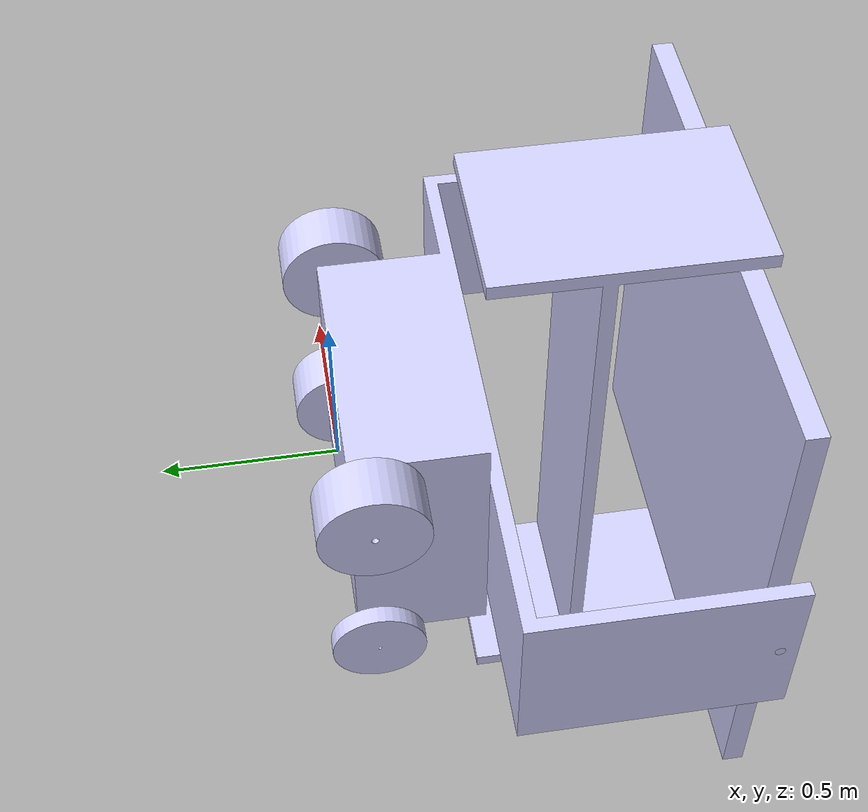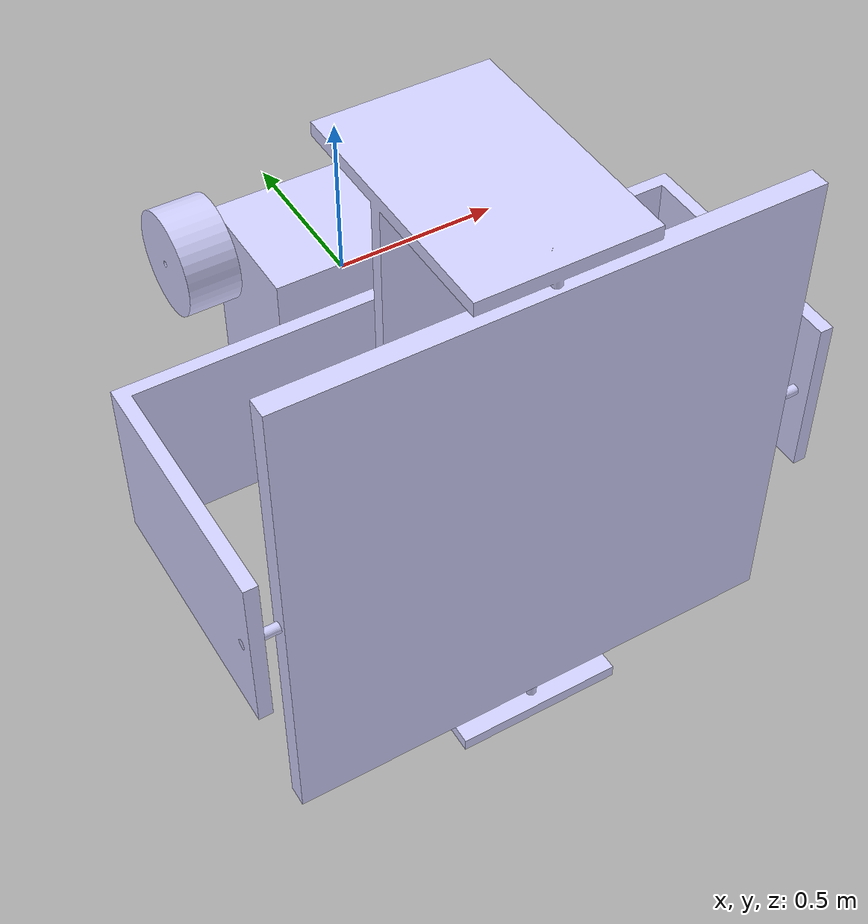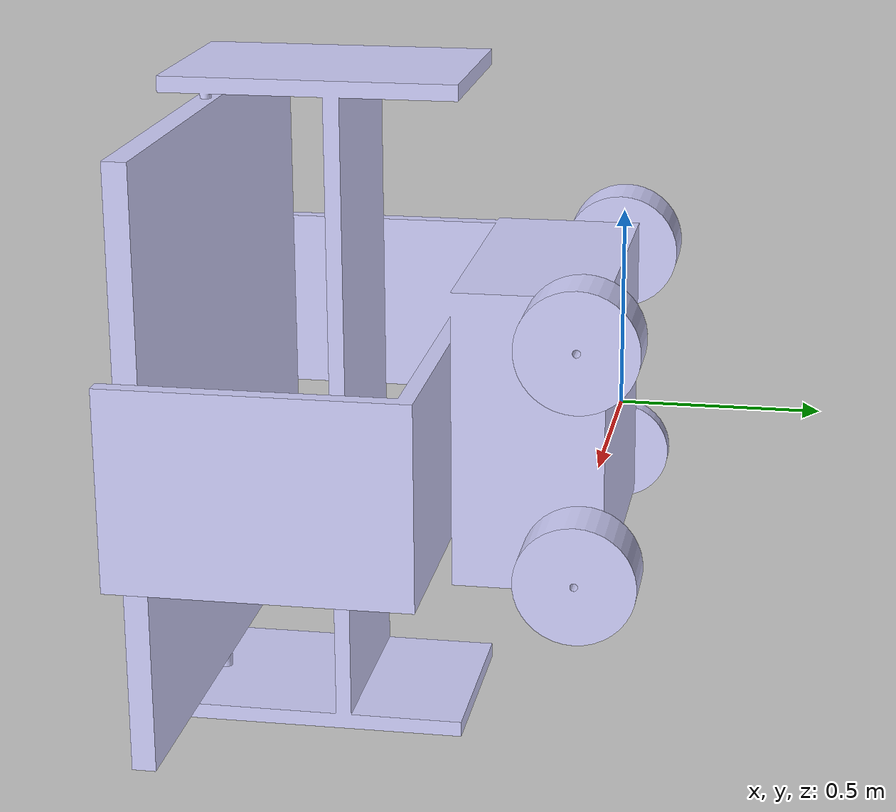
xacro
<?xml version="1.0" encoding="utf-8"?>

<robot name="Mobile_Leveling_Platform_V2" xmlns:xacro="http://ros.org/wiki/xacro">

  <link
    name="base_link">
    <inertial>
      <origin
        xyz="0.000264293169840443 2.30397979722199E-17 0.272726096989661"
        rpy="0 0 0" />
      <mass
        value="272.93514380551" />
      <inertia
        ixx="23.584412468661"
        ixy="4.24853656306549E-15"
        ixz="3.65668447623808E-14"
        iyy="49.7334587830144"
        iyz="-1.97786741837889E-15"
        izz="48.5014313731974" />
    </inertial>
    <visual>
      <origin
        xyz="0 0 0"
        rpy="0 0 0" />
      <geometry>
        <mesh
          filename="package://Mobile_Leveling_Platform_V2/Cmesh/base_link.STL" />
      </geometry>
      <material
        name="">
        <color
          rgba="0.823529411764706 0.823529411764706 1 1" />
      </material>
    </visual>
    <collision>
      <origin
        xyz="0 0 0"
        rpy="0 0 0" />
      <geometry>
        <mesh
          filename="package://Mobile_Leveling_Platform_V2/Cmesh/base_link.STL" />
      </geometry>
    </collision>
  </link>
  <link
    name="upper_rev_link">
    <inertial>
      <origin
        xyz="0 -1.57002047618442E-19 0"
        rpy="0 0 0" />
      <mass
        value="0.0918915851175015" />
      <inertia
        ixx="1.03378033257189E-05"
        ixy="1.1224284737885E-36"
        ixz="0"
        iyy="0.000134582884036674"
        iyz="1.65681558757775E-53"
        izz="0.000134582884036674" />
    </inertial>
    <visual>
      <origin
        xyz="0 0 0"
        rpy="0 0 0" />
      <geometry>
        <mesh
          filename="package://Mobile_Leveling_Platform_V2/Cmesh/upper_rev_link.STL" />
      </geometry>
      <material
        name="">
        <color
          rgba="0.823529411764706 0.823529411764706 1 1" />
      </material>
    </visual>
    <collision>
      <origin
        xyz="0 0 0"
        rpy="0 0 0" />
      <geometry>
        <mesh
          filename="package://Mobile_Leveling_Platform_V2/Cmesh/upper_rev_link.STL" />
      </geometry>
    </collision>
  </link>
  <joint
    name="upper_rev_joint"
    type="revolute">
    <origin
      xyz="-0.785 -1.065 0"
      rpy="1.5708 0 0" />
    <parent
      link="base_link" />
    <child
      link="upper_rev_link" />
    <axis
      xyz="1 0 0" />
    <limit
      lower="-0.5236"
      upper="0.5236"
      effort="1"
      velocity="1" />
  </joint>
  <link
    name="upper">
    <inertial>
      <origin
        xyz="1.78302665698728E-18 -2.91008325677673E-17 0"
        rpy="0 0 0" />
      <mass
        value="134.915176998353" />
      <inertia
        ixx="25.3300779091643"
        ixy="-5.66495635123674E-18"
        ixz="6.83328050975665E-39"
        iyy="25.3300779091643"
        iyz="0"
        izz="50.5791653609164" />
    </inertial>
    <visual>
      <origin
        xyz="0 0 0"
        rpy="0 0 0" />
      <geometry>
        <mesh
          filename="package://Mobile_Leveling_Platform_V2/Cmesh/upper.STL" />
      </geometry>
      <material
        name="">
        <color
          rgba="0.823529411764706 0.823529411764706 1 1" />
      </material>
    </visual>
    <collision>
      <origin
        xyz="0 0 0"
        rpy="0 0 0" />
      <geometry>
        <mesh
          filename="package://Mobile_Leveling_Platform_V2/Cmesh/upper.STL" />
      </geometry>
    </collision>
  </link>
  <joint
    name="upper_joint"
    type="fixed">
    <origin
      xyz="0.785 0 0"
      rpy="0 0 0" />
    <parent
      link="upper_rev_link" />
    <child
      link="upper" />
    <axis
      xyz="0 0 0" />
  </joint>
  <link
    name="under_upper">
    <inertial>
      <origin
        xyz="-6.98006306144068E-18 -6.42208530075164E-16 0.0493647242718683"
        rpy="0 0 0" />
      <mass
        value="62.1272345024704" />
      <inertia
        ixx="28.8463342761531"
        ixy="-9.78926850767392E-15"
        ixz="-2.85744707206766E-16"
        iyy="2.69544652217457"
        iyz="4.95475416894822E-15"
        izz="28.7342354011934" />
    </inertial>
    <visual>
      <origin
        xyz="0 0 0"
        rpy="0 0 0" />
      <geometry>
        <mesh
          filename="package://Mobile_Leveling_Platform_V2/Cmesh/under_upper.STL" />
      </geometry>
      <material
        name="">
        <color
          rgba="0.823529411764706 0.823529411764706 1 1" />
      </material>
    </visual>
    <collision>
      <origin
        xyz="0 0 0"
        rpy="0 0 0" />
      <geometry>
        <mesh
          filename="package://Mobile_Leveling_Platform_V2/Cmesh/under_upper.STL" />
      </geometry>
    </collision>
  </link>
  <joint
    name="under_upper_joint"
    type="fixed">
    <origin
      xyz="0 0 -0.4"
      rpy="0 0 0" />
    <parent
      link="upper" />
    <child
      link="under_upper" />
    <axis
      xyz="0 0 0" />
  </joint>
  <link
    name="front_L_tire">
    <inertial>
      <origin
        xyz="5.55111512312578E-17 0 6.93889390390723E-18"
        rpy="0 0 0" />
      <mass
        value="10.5557513160617" />
      <inertia
        ixx="0.119279989871497"
        ixy="-2.22769665127881E-18"
        ixz="-2.33468732730583E-35"
        iyy="0.0794320286533643"
        iyz="2.28657926377999E-34"
        izz="0.0794320286533643" />
    </inertial>
    <visual>
      <origin
        xyz="0 0 0"
        rpy="0 0 0" />
      <geometry>
        <mesh
          filename="package://Mobile_Leveling_Platform_V2/Cmesh/front_L_tire.STL" />
      </geometry>
      <material
        name="">
        <color
          rgba="0.823529411764706 0.823529411764706 1 1" />
      </material>
    </visual>
    <collision>
      <origin
        xyz="0 0 0"
        rpy="0 0 0" />
      <geometry>
        <mesh
          filename="package://Mobile_Leveling_Platform_V2/Cmesh/front_L_tire.STL" />
      </geometry>
    </collision>
  </link>
  <joint
    name="front_L_tire_joint"
    type="continuous">
    <origin
      xyz="-0.47 -0.05 0.29"
      rpy="1.5708 0 0" />
    <parent
      link="base_link" />
    <child
      link="front_L_tire" />
    <axis
      xyz="1 0 0" />
  </joint>
  <link
    name="front_R_tire">
    <inertial>
      <origin
        xyz="-5.55111512312578E-17 0 0"
        rpy="0 0 0" />
      <mass
        value="10.5557513160617" />
      <inertia
        ixx="0.119279989871497"
        ixy="1.02067470144143E-18"
        ixz="2.81901292539499E-34"
        iyy="0.0794320286533643"
        iyz="2.28657926377999E-34"
        izz="0.0794320286533643" />
    </inertial>
    <visual>
      <origin
        xyz="0 0 0"
        rpy="0 0 0" />
      <geometry>
        <mesh
          filename="package://Mobile_Leveling_Platform_V2/Cmesh/front_R_tire.STL" />
      </geometry>
      <material
        name="">
        <color
          rgba="0.823529411764706 0.823529411764706 1 1" />
      </material>
    </visual>
    <collision>
      <origin
        xyz="0 0 0"
        rpy="0 0 0" />
      <geometry>
        <mesh
          filename="package://Mobile_Leveling_Platform_V2/Cmesh/front_R_tire.STL" />
      </geometry>
    </collision>
  </link>
  <joint
    name="front_R_tire_joint"
    type="continuous">
    <origin
      xyz="0.47 -0.05 0.29"
      rpy="1.5708 0 0" />
    <parent
      link="base_link" />
    <child
      link="front_R_tire" />
    <axis
      xyz="-1 0 0" />
  </joint>
  <link
    name="rear_L_tire">
    <inertial>
      <origin
        xyz="5.55111512312578E-17 0 6.93889390390723E-18"
        rpy="0 0 0" />
      <mass
        value="10.5557513160617" />
      <inertia
        ixx="0.119279989871497"
        ixy="-2.22769665127881E-18"
        ixz="-2.33468732730583E-35"
        iyy="0.0794320286533643"
        iyz="2.28657926377999E-34"
        izz="0.0794320286533643" />
    </inertial>
    <visual>
      <origin
        xyz="0 0 0"
        rpy="0 0 0" />
      <geometry>
        <mesh
          filename="package://Mobile_Leveling_Platform_V2/Cmesh/rear_L_tire.STL" />
      </geometry>
      <material
        name="">
        <color
          rgba="0.823529411764706 0.823529411764706 1 1" />
      </material>
    </visual>
    <collision>
      <origin
        xyz="0 0 0"
        rpy="0 0 0" />
      <geometry>
        <mesh
          filename="package://Mobile_Leveling_Platform_V2/Cmesh/rear_L_tire.STL" />
      </geometry>
    </collision>
  </link>
  <joint
    name="rear_L_tire_joint"
    type="continuous">
    <origin
      xyz="-0.47 -0.05 -0.29"
      rpy="1.5708 0 0" />
    <parent
      link="base_link" />
    <child
      link="rear_L_tire" />
    <axis
      xyz="1 0 0" />
  </joint>
  <link
    name="rear_R_tire">
    <inertial>
      <origin
        xyz="-5.55111512312578E-17 0 0"
        rpy="0 0 0" />
      <mass
        value="10.5557513160617" />
      <inertia
        ixx="0.119279989871497"
        ixy="1.02067470144143E-18"
        ixz="2.81901292539499E-34"
        iyy="0.0794320286533643"
        iyz="2.28657926377999E-34"
        izz="0.0794320286533643" />
    </inertial>
    <visual>
      <origin
        xyz="0 0 0"
        rpy="0 0 0" />
      <geometry>
        <mesh
          filename="package://Mobile_Leveling_Platform_V2/Cmesh/rear_R_tire.STL" />
      </geometry>
      <material
        name="">
        <color
          rgba="0.823529411764706 0.823529411764706 1 1" />
      </material>
    </visual>
    <collision>
      <origin
        xyz="0 0 0"
        rpy="0 0 0" />
      <geometry>
        <mesh
          filename="package://Mobile_Leveling_Platform_V2/Cmesh/rear_R_tire.STL" />
      </geometry>
    </collision>
  </link>
  <joint
    name="rear_R_tire_joint"
    type="continuous">
    <origin
      xyz="0.47 -0.05 -0.29"
      rpy="1.5708 0 0" />
    <parent
      link="base_link" />
    <child
      link="rear_R_tire" />
    <axis
      xyz="-1 0 0" />
  </joint>
</robot>
